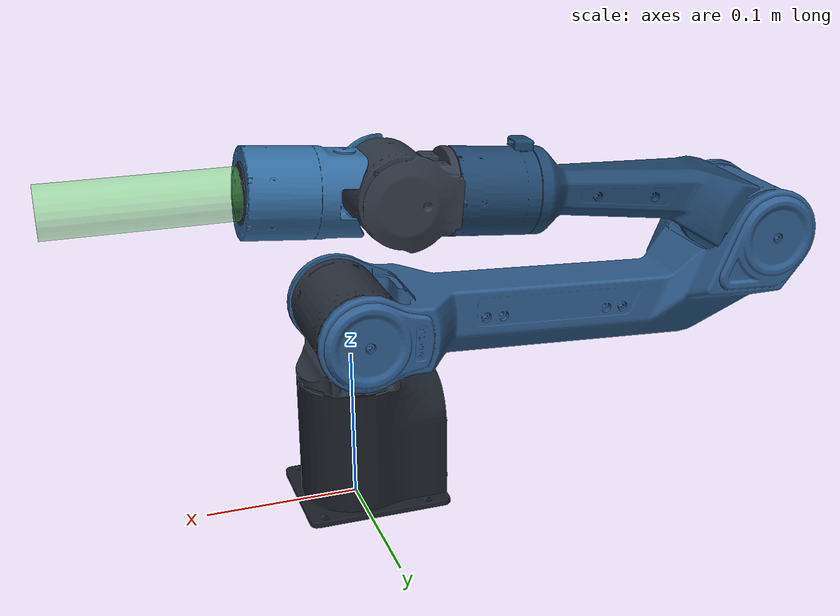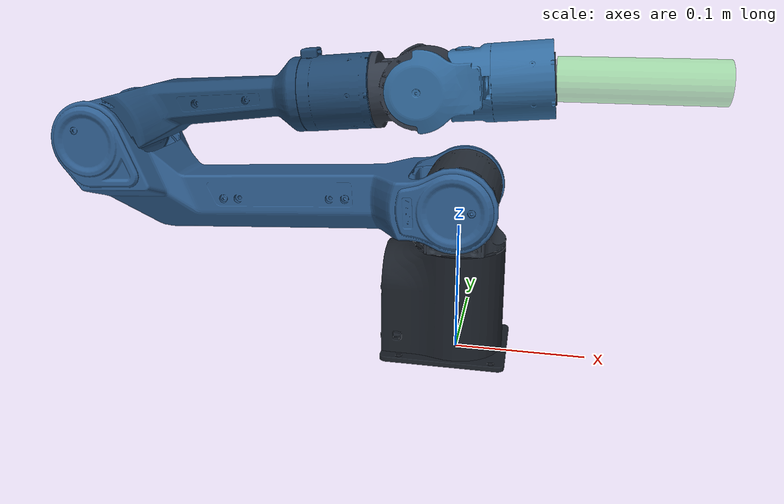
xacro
<?xml version="1.0"?>
<robot xmlns:xacro="http://www.ros.org/wiki/xacro" name="piperh">
  <xacro:arg name="initial_positions_file" default="$(find piperh_moveit_config)/config/initial_positions.yaml"/>
  <xacro:arg name="root_frame" default="world"/>
  <xacro:arg name="mount_x" default="0.0"/>
  <xacro:arg name="mount_y" default="0.0"/>
  <xacro:arg name="mount_z" default="0.0"/>
  <xacro:arg name="mount_roll" default="0.0"/>
  <xacro:arg name="mount_pitch" default="0.0"/>
  <xacro:arg name="mount_yaw" default="0.0"/>
  <!-- The plain Piper-H URDF is the official six-joint, no-gripper model. -->
  <xacro:include filename="$(find piper_h_description)/urdf/piper_h_description.urdf"/>
  <xacro:include filename="$(find piperh_moveit_config)/config/piperh.ros2_control.xacro"/>

  <!-- KDL cannot use a root link that carries inertia. Keep base_link's physical
       properties and place a massless fixed frame above it instead. -->
  <link name="$(arg root_frame)"/>
  <joint name="world_to_base" type="fixed">
    <origin
      xyz="$(arg mount_x) $(arg mount_y) $(arg mount_z)"
      rpy="$(arg mount_roll) $(arg mount_pitch) $(arg mount_yaw)"/>
    <parent link="$(arg root_frame)"/>
    <child link="base_link"/>
  </joint>

  <link name="pulse_tool_envelope">
    <visual>
      <origin xyz="0 0 0.057995" rpy="0 0 0"/>
      <geometry><cylinder radius="0.016265" length="0.11599"/></geometry>
      <material name="pulse_tool_green"><color rgba="0.35 0.85 0.35 0.45"/></material>
    </visual>
    <collision>
      <origin xyz="0 0 0.057995" rpy="0 0 0"/>
      <geometry><cylinder radius="0.016265" length="0.11599"/></geometry>
    </collision>
  </link>
  <joint name="pulse_tool_mount" type="fixed">
    <!-- +90 deg about Link6 +Z; the old mount was the identity rotation. -->
    <origin xyz="0 0 0" rpy="0 0 1.57079632679"/>
    <parent link="Link6"/>
    <child link="pulse_tool_envelope"/>
  </joint>
  <link name="pulse_tip_center"/>
  <joint name="pulse_tip_center_joint" type="fixed">
    <origin xyz="0 0 0.11599" rpy="0 0 0"/>
    <parent link="pulse_tool_envelope"/>
    <child link="pulse_tip_center"/>
  </joint>

  <xacro:piperh_ros2_control
    name="PiperHNoGripperMockSystem"
    initial_positions_file="$(arg initial_positions_file)"/>
</robot>

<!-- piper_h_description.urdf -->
<robot
  name="piper_h_description">
  <!-- Binary STL geometry has no portable material data. Keep explicit,
       non-white link colors here so RViz renders a readable arm model. -->
  <link
    name="base_link">
    <inertial>
      <origin
        xyz="-0.0116216679858881 4.15788440943184E-05 0.0410845423187343"
        rpy="0 0 0" />
      <mass
        value="0.17076936349368" />
      <inertia
        ixx="0.000228123208400866"
        ixy="1.38955464051488E-07"
        ixz="6.65141446336986E-06"
        iyy="0.00027812842789125"
        iyz="1.65175257145242E-07"
        izz="0.000229266732859796" />
    </inertial>
    <visual>
      <origin
        xyz="0 0 0"
        rpy="0 0 0" />
      <geometry>
        <mesh
          filename="package://piper_h_description/meshes/base_link.STL" />
      </geometry>
      <material
        name="graphite_base">
        <color
          rgba="0.10 0.12 0.15 1" />
      </material>
    </visual>
    <collision>
      <origin
        xyz="0 0 0"
        rpy="0 0 0" />
      <geometry>
        <mesh
          filename="package://piper_h_description/meshes/base_link.STL" />
      </geometry>
    </collision>
  </link>
  <link
    name="Link1">
    <inertial>
      <origin
        xyz="0.000898972809391425 -0.0017128345134696 -0.00895795324198079"
        rpy="0 0 0" />
      <mass
        value="0.095130320813071" />
      <inertia
        ixx="3.89303819225542E-05"
        ixy="2.71827364740144E-07"
        ixz="1.78296584027163E-07"
        iyy="5.60153481205046E-05"
        iyz="1.02032883575856E-07"
        izz="4.65461363833488E-05" />
    </inertial>
    <visual>
      <origin
        xyz="0 0 0"
        rpy="0 0 0" />
      <geometry>
        <mesh
          filename="package://piper_h_description/meshes/Link1.STL" />
      </geometry>
      <material
        name="graphite_joint">
        <color
          rgba="0.16 0.19 0.23 1" />
      </material>
    </visual>
    <collision>
      <origin
        xyz="0 0 0"
        rpy="0 0 0" />
      <geometry>
        <mesh
          filename="package://piper_h_description/meshes/Link1.STL" />
      </geometry>
    </collision>
  </link>
  <joint
    name="joint1"
    type="revolute">
    <origin
      xyz="0 0 0.123"
      rpy="0 0 0" />
    <parent
      link="base_link" />
    <child
      link="Link1" />
    <axis
      xyz="0 0 1" />
    <limit
      lower="-2.618"
      upper="2.618"
      effort="100"
      velocity="3" />
  </joint>
  <link
    name="Link2">
    <inertial>
      <origin
        xyz="0.175058051795962 -0.013263959401964 0.00160398731659567"
        rpy="0 0 0" />
      <mass
        value="0.297349969020434" />
      <inertia
        ixx="0.000164919085428283"
        ixy="6.39135842640096E-05"
        ixz="-1.43495991521534E-06"
        iyy="0.00163150429985587"
        iyz="-1.15776231590507E-06"
        izz="0.00168482164179664" />
    </inertial>
    <visual>
      <origin
        xyz="0 0 0"
        rpy="0 0 0" />
      <geometry>
        <mesh
          filename="package://piper_h_description/meshes/Link2.STL" />
      </geometry>
      <material
        name="steel_blue">
        <color
          rgba="0.18 0.36 0.55 1" />
      </material>
    </visual>
    <collision>
      <origin
        xyz="0 0 0"
        rpy="0 0 0" />
      <geometry>
        <mesh
          filename="package://piper_h_description/meshes/Link2.STL" />
      </geometry>
    </collision>
  </link>
  <joint
    name="joint2"
    type="revolute">
    <origin
      xyz="0 0 0"
      rpy="1.5708 -0.13674 3.1416" />
    <parent
      link="Link1" />
    <child
      link="Link2" />
    <axis
      xyz="0 0 1" />
    <limit
      lower="0"
      upper="3.14"
      effort="100"
      velocity="3" />
  </joint>
  <link
    name="Link3">
    <inertial>
      <origin
        xyz="-0.00937198976084005 -0.116255702062803 -0.000655711046030733"
        rpy="0 0 0" />
      <mass
        value="0.139005088174055" />
      <inertia
        ixx="0.000138596904431255"
        ixy="-3.43992762936895E-07"
        ixz="3.78558835970272E-07"
        iyy="4.71404976476514E-05"
        iyz="9.97047138050079E-07"
        izz="0.000149219114996657" />
    </inertial>
    <visual>
      <origin
        xyz="0 0 0"
        rpy="0 0 0" />
      <geometry>
        <mesh
          filename="package://piper_h_description/meshes/Link3.STL" />
      </geometry>
      <material
        name="steel_blue_dark">
        <color
          rgba="0.12 0.27 0.42 1" />
      </material>
    </visual>
    <collision>
      <origin
        xyz="0 0 0"
        rpy="0 0 0" />
      <geometry>
        <mesh
          filename="package://piper_h_description/meshes/Link3.STL" />
      </geometry>
    </collision>
  </link>
  <joint
    name="joint3"
    type="revolute">
    <origin
      xyz="0.28508 0 0"
      rpy="0 0 -1.8796" />
    <parent
      link="Link2" />
    <child
      link="Link3" />
    <axis
      xyz="0 0 1" />
    <limit
      lower="-2.96706"
      upper="0"
      effort="100"
      velocity="3" />
  </joint>
  <link
    name="Link4">
    <inertial>
      <origin
        xyz="0.00120008498546645 0.00402105386550108 -0.00901261181081513"
        rpy="0 0 0" />
      <mass
        value="0.0625155037542606" />
      <inertia
        ixx="4.34001804299788E-05"
        ixy="-1.78247237961623E-07"
        ixz="7.9877981542642E-07"
        iyy="3.77270563878061E-05"
        iyz="3.92168392419924E-07"
        izz="3.65881057070137E-05" />
    </inertial>
    <visual>
      <origin
        xyz="0 0 0"
        rpy="0 0 0" />
      <geometry>
        <mesh
          filename="package://piper_h_description/meshes/Link4.STL" />
      </geometry>
      <material
        name="graphite_wrist">
        <color
          rgba="0.19 0.22 0.27 1" />
      </material>
    </visual>
    <collision>
      <origin
        xyz="0 0 0"
        rpy="0 0 0" />
      <geometry>
        <mesh
          filename="package://piper_h_description/meshes/Link4.STL" />
      </geometry>
    </collision>
  </link>
  <joint
    name="joint4"
    type="revolute">
    <origin
      xyz="0 -0.25666 0"
      rpy="1.5708 0 0.17203" />
    <parent
      link="Link3" />
    <child
      link="Link4" />
    <axis
      xyz="-0.087161 0 0.99619" />
    <limit
      lower="-2.356195"
      upper="2.356195"
      effort="100"
      velocity="3" />
  </joint>
  <link
    name="Link5">
    <inertial>
      <origin
        xyz="-9.76421424187524E-05 -0.0495078447416577 -0.0069183293653338"
        rpy="0 0 0" />
      <mass
        value="0.0683301439531726" />
      <inertia
        ixx="8.08932317895225E-05"
        ixy="2.20176838731191E-07"
        ixz="5.56694167592644E-08"
        iyy="4.13226227161016E-05"
        iyz="1.71025553076376E-05"
        izz="7.62573282419664E-05" />
    </inertial>
    <visual>
      <origin
        xyz="0 0 0"
        rpy="0 0 0" />
      <geometry>
        <mesh
          filename="package://piper_h_description/meshes/Link5.STL" />
      </geometry>
      <material
        name="steel_blue_wrist">
        <color
          rgba="0.20 0.42 0.62 1" />
      </material>
    </visual>
    <collision>
      <origin
        xyz="0 0 0"
        rpy="0 0 0" />
      <geometry>
        <mesh
          filename="package://piper_h_description/meshes/Link5.STL" />
      </geometry>
    </collision>
  </link>
  <joint
    name="joint5"
    type="revolute">
    <origin
      xyz="0 0 0"
      rpy="-1.5708 -0.087272 0" />
    <parent
      link="Link4" />
    <child
      link="Link5" />
    <axis
      xyz="0 0 1" />
    <limit
      lower="-1.56207"
      upper="1.56207"
      effort="100"
      velocity="3" />
  </joint>
  <link
    name="Link6">
    <inertial>
      <origin
        xyz="0.0769862132705599 0.0288041655584747 -0.162335527696906"
        rpy="0 0 0" />
      <mass
        value="0.851169543242842" />
      <inertia
        ixx="0.00204979841659076"
        ixy="-3.46794622727557E-05"
        ixz="-0.000104197916276416"
        iyy="0.00210041391526329"
        iyz="-0.000112551398932383"
        izz="0.000469888685422321" />
    </inertial>
    <visual>
      <origin
        xyz="0 0 0"
        rpy="0 0 0" />
      <geometry>
        <mesh
          filename="package://piper_h_description/meshes/Link6.STL" />
      </geometry>
      <material
        name="graphite_tool">
        <color
          rgba="0.13 0.16 0.20 1" />
      </material>
    </visual>
    <collision>
      <origin
        xyz="0 0 0"
        rpy="0 0 0" />
      <geometry>
        <mesh
          filename="package://piper_h_description/meshes/Link6.STL" />
      </geometry>
    </collision>
  </link>
  <joint
    name="joint6"
    type="revolute">
    <origin
      xyz="0 -0.096 0"
      rpy="1.5708 0 0.087272" />
    <parent
      link="Link5" />
    <child
      link="Link6" />
    <axis
      xyz="-0.087161 0 0.99619" />
    <limit
      lower="-3.14"
      upper="3.14"
      effort="100"
      velocity="3" />
  </joint>
</robot>
